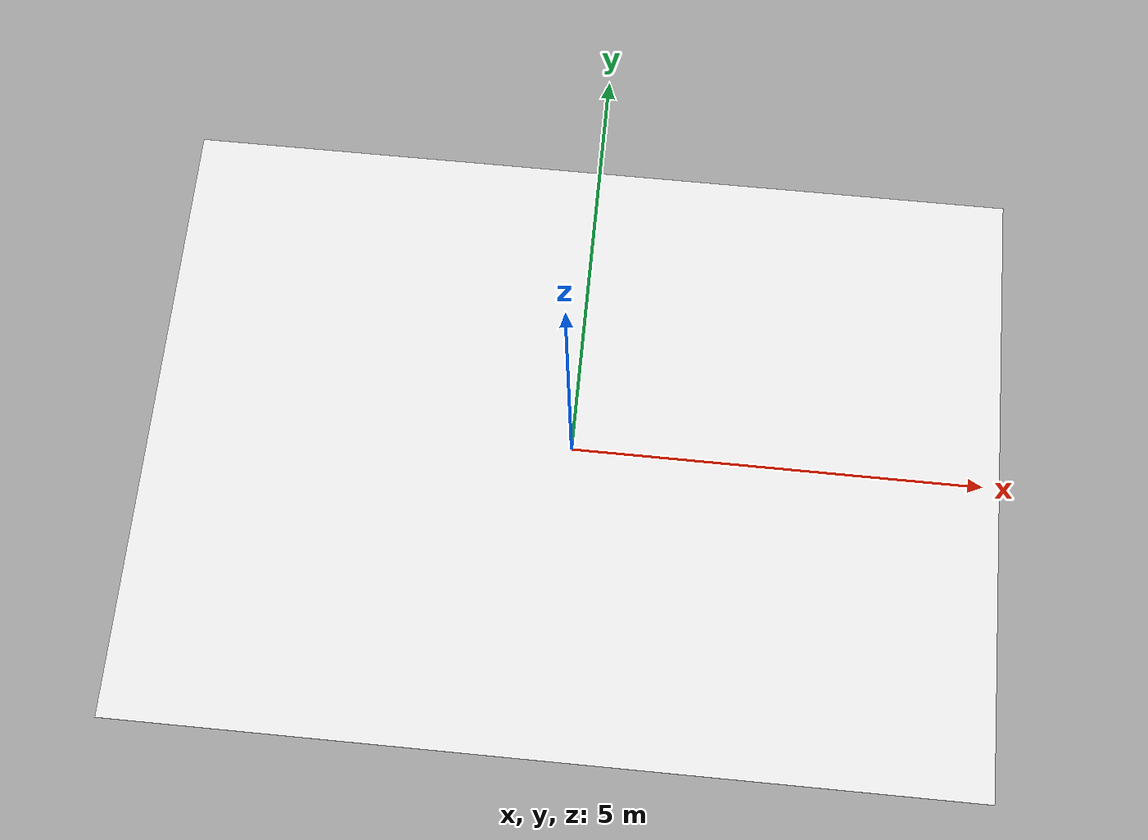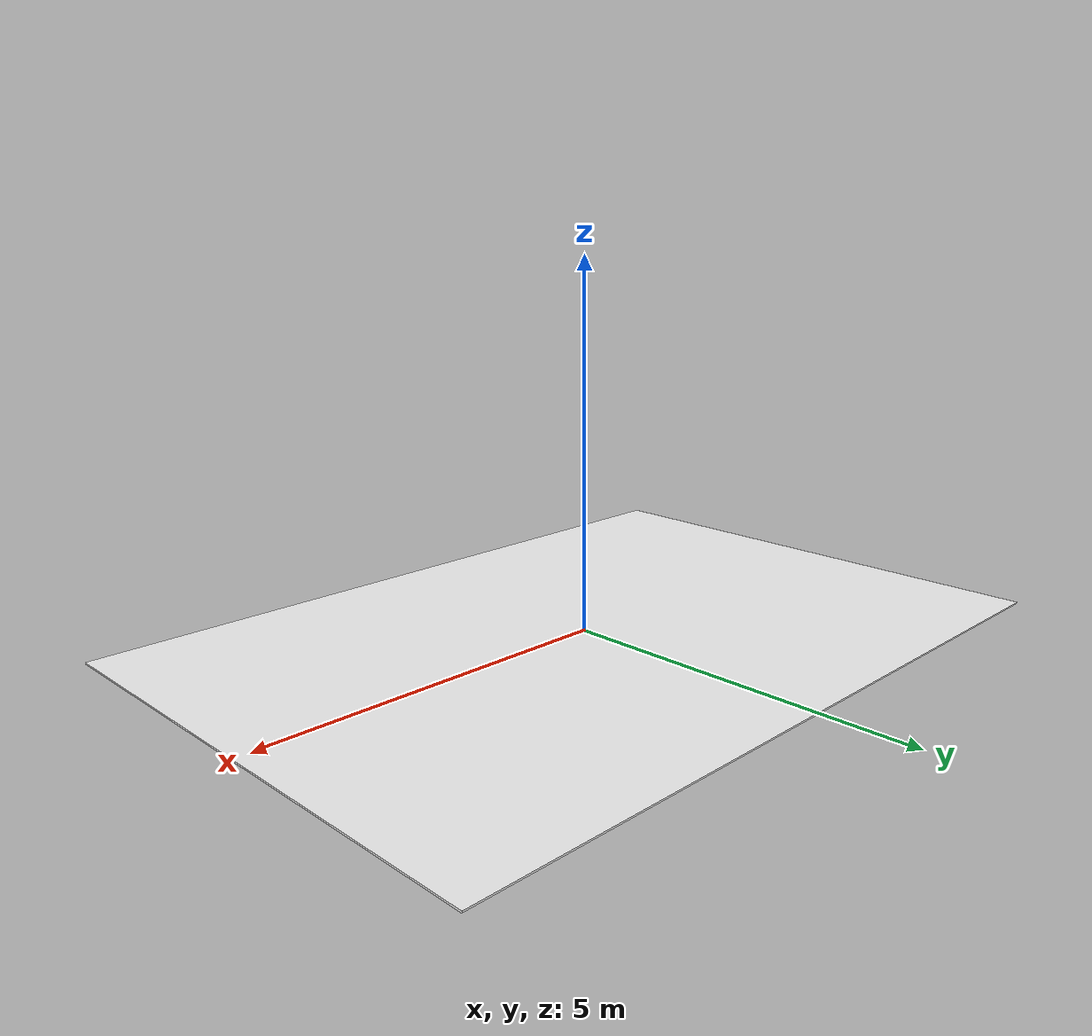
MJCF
<mujoco model="field">
  <asset>
    <texture name="field_full_normal" type="2d" file="textures/field_full_normal.png" />
    <texture name="field_full_base_color" type="2d" file="textures/field_full_base_color.png" />
    <material name="field">
      <layer texture="field_full_normal" role="rgb" />
      <layer texture="field_full_base_color" role="rgb" />
    </material>
  </asset>
  <worldbody>
    <body name="field" pos="0 0 -0.01">
      <geom name="field_ground" type="box" size="5.2 3.7 0.01" material="field" />
    </body>
  </worldbody>
</mujoco>
